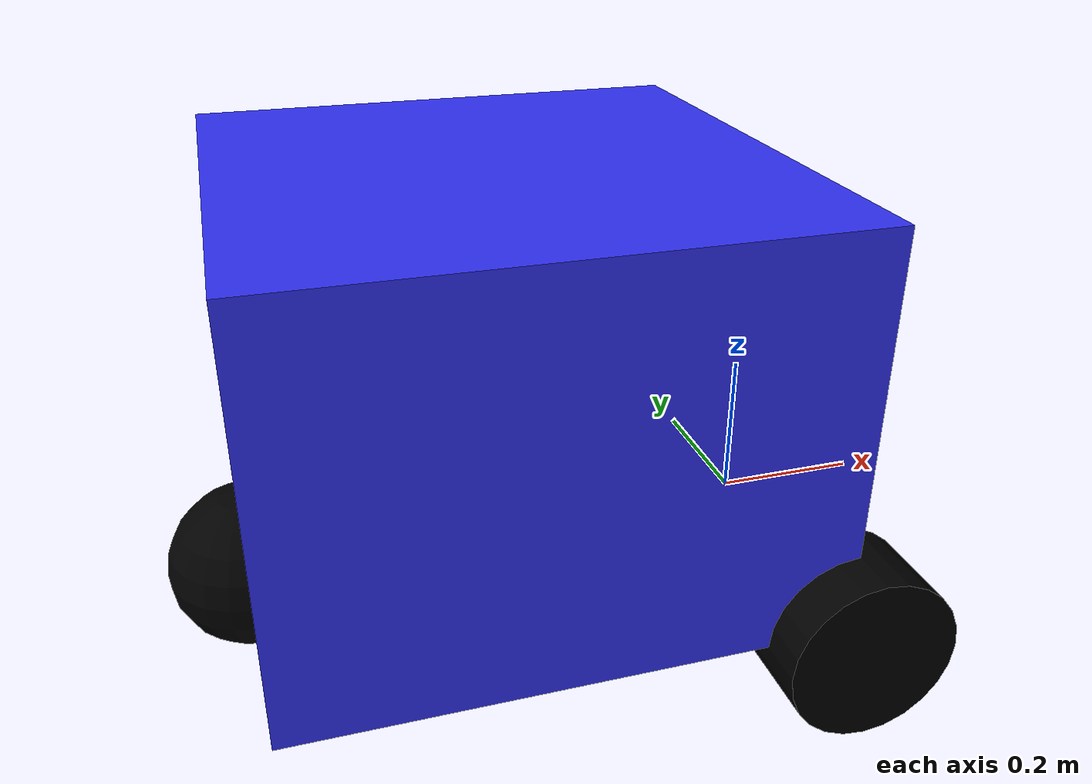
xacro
<?xml version="1.0" ?>
<!-- |    This document was autogenerated by xacro from /home/josemsotov/Desktop/Smart_GOLF_TROLLEY/dev_ws/src/my_bot/description/robot_core.xacro | -->
<!-- |    EDITING THIS FILE BY HAND IS NOT RECOMMENDED                                 | -->
<robot xmlns:xacro="http://www.ros.org/wiki/xacro"  name="robot">
  <!-- Specify some standard inertial calculations https://en.wikipedia.org/wiki/List_of_moments_of_inertia -->
  <!-- These make use of xacro's mathematical functionality -->
  <material name="white">
    <color rgba="1 1 1 1"/>
  </material>
  <material name="orange">
    <color rgba="1 0.3 0.1 1"/>
  </material>
  <material name="blue">
    <color rgba="0.2 0.2 1 1"/>
  </material>
  <material name="black">
    <color rgba="0 0 0 1"/>
  </material>
  <!--   BASE LINK   -->
  <link name="base_link">

    </link>
  <!--   CHASSIS LINK   -->
  <joint name="chassis_joint" type="fixed">
    <parent link="base_link"/>
    <child link="chassis"/>
    <origin xyz="0 0 0"/>
  </joint>
  <link name="chassis">
    <visual>
      <origin xyz="-0.35 0 0.2625"/>
      <geometry>
        <box size="0.7 0.71 0.525"/>
      </geometry>
      <material name="blue"/>
    </visual>
    <collision>
      <origin xyz="-0.35 0 0.2625"/>
      <geometry>
        <box size="0.7 0.71 0.525"/>
      </geometry>
    </collision>
    <inertial>
      <origin rpy="0 0 0" xyz="-0.35 0 0.2625"/>
      <mass value="1"/>
      <inertia ixx="0.6497708333333333" ixy="0.0" ixz="0.0" iyy="0.6380208333333333" iyz="0.0" izz="0.8284166666666666"/>
    </inertial>
  </link>
  <gazebo reference="chassis">
    <material>Gazebo/Blue</material>
  </gazebo>
  <!--   LEFT WHEEL LINK   -->
  <joint name="left_wheel_joint" type="continuous">
    <parent link="base_link"/>
    <child link="left_wheel"/>
    <origin xyz="0 0.355 0" rpy="${pi/2} 0 0"/>
    <axis xyz="0 0 -1"/>
  </joint>
  <link name="left_wheel">
    <visual>
      <geometry>
        <cylinder length="0.12" radius="0.11"/>
      </geometry>
      <material name="black"/>
    </visual>
    <collision>
      <geometry>
        <cylinder length="0.12" radius="0.11"/>
      </geometry>
    </collision>
    <inertial>
      <origin rpy="0 0 0" xyz="0 0 0"/>
      <mass value="1.5"/>
      <inertia ixx="0.006337499999999999" ixy="0.0" ixz="0.0" iyy="0.006337499999999999" iyz="0.0" izz="0.009075"/>
    </inertial>
  </link>
  <gazebo reference="left_wheel">
    <material>Gazebo/Black</material>
  </gazebo>
  <!--   RIGHT WHEEL LINK   -->
  <joint name="right_wheel_joint" type="continuous">
    <parent link="base_link"/>
    <child link="right_wheel"/>
    <origin xyz="0 -0.355 0" rpy="-${pi/2} 0 0"/>
    <axis xyz="0 0 1"/>
  </joint>
  <link name="right_wheel">
    <visual>
      <geometry>
         <cylinder length="0.12" radius="0.11"/>
      </geometry>
      <material name="black"/>
    </visual>
    <collision>
      <geometry>
        <cylinder length="0.12" radius="0.11"/>
      </geometry>
    </collision>
    <inertial>
      <origin rpy="0 0 0" xyz="0 0 0"/>
      <mass value="1.5"/>
      <inertia ixx="0.006337499999999999" ixy="0.0" ixz="0.0" iyy="0.006337499999999999" iyz="0.0" izz="0.009075"/>
    </inertial>
  </link>
  <gazebo reference="right_wheel">
    <material>Gazebo/Black</material>
  </gazebo>
  <!--   CASTER WHEEL LINK   -->
  <joint name="caster_joint" type="fixed">
    <parent link="chassis"/>
    <child link="caster_wheel"/>
    <origin xyz="-0.7 0 0"/>
  </joint>
  <link name="caster_wheel">
    <visual>
       <geometry>
          <sphere radius="0.11"/>
      </geometry>
      <material name="black"/>
    </visual>
    <collision>
      <geometry>
        <sphere radius="0.11"/>
      </geometry>
    </collision>
    <inertial>
      <origin rpy="0 0 0" xyz="0 0 0"/>
      <mass value="0.5"/>
      <inertia ixx="0.0024200000000000003" ixy="0.0" ixz="0.0" iyy="0.0024200000000000003" iyz="0.0" izz="0.0024200000000000003"/>
    </inertial>
  </link>
  <gazebo reference="caster_wheel">
    <material>Gazebo/Grey</material>
    <mu1 value="0.001"/>
    <mu2 value="0.001"/>
  </gazebo>
</robot>
